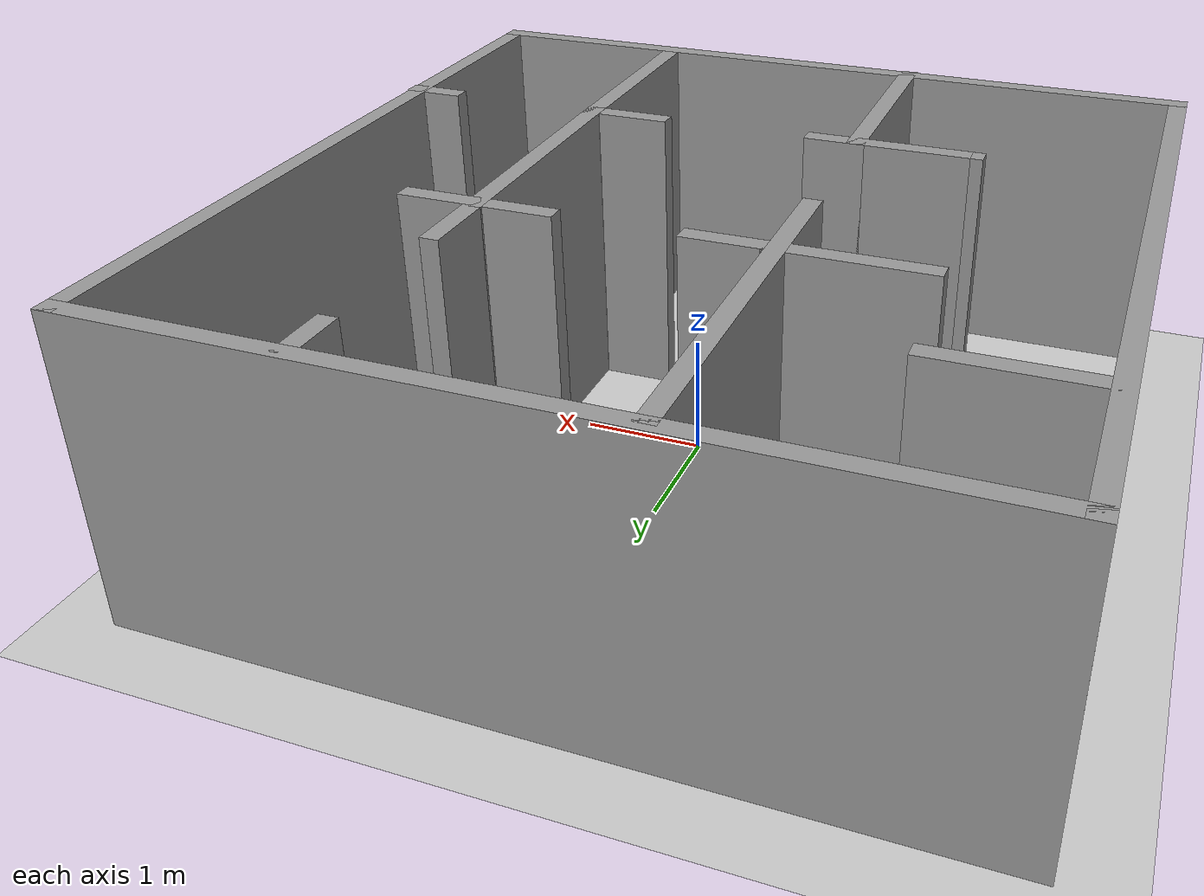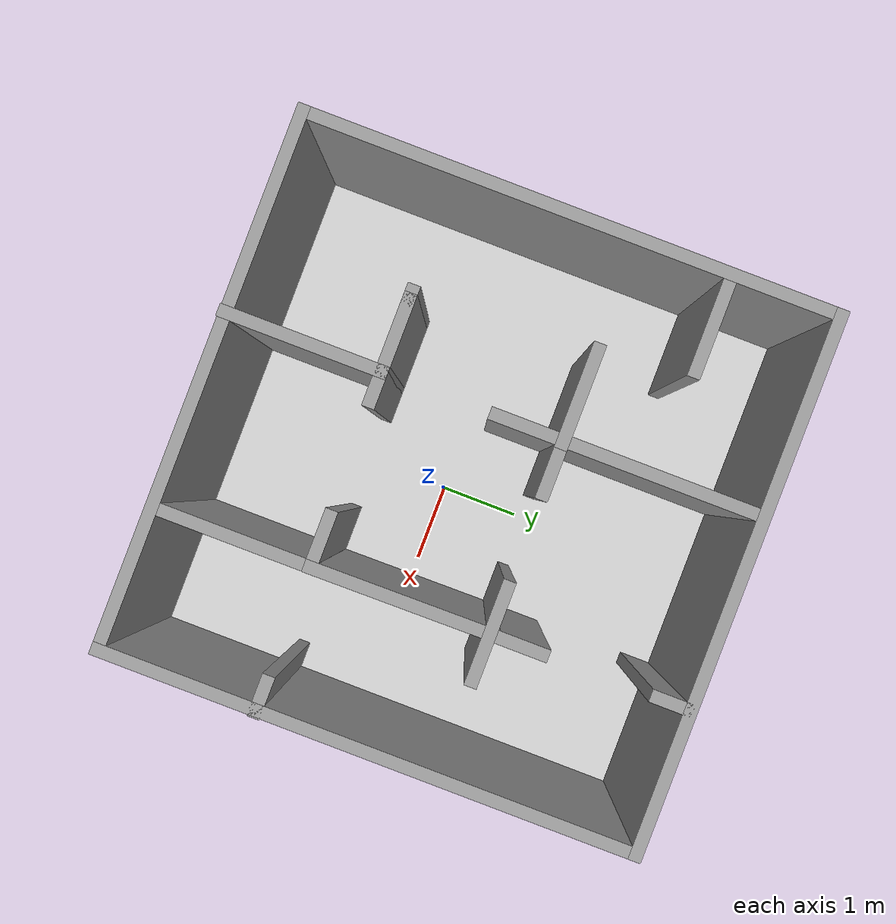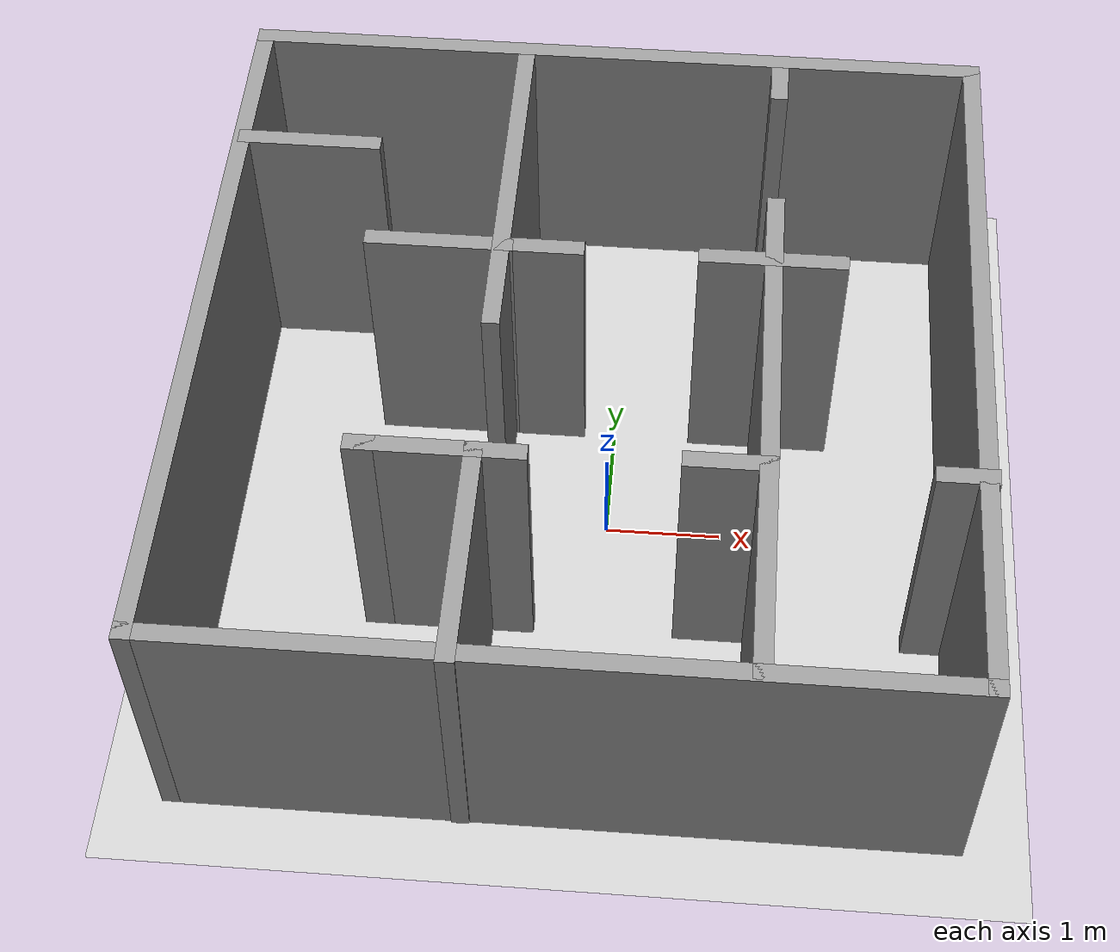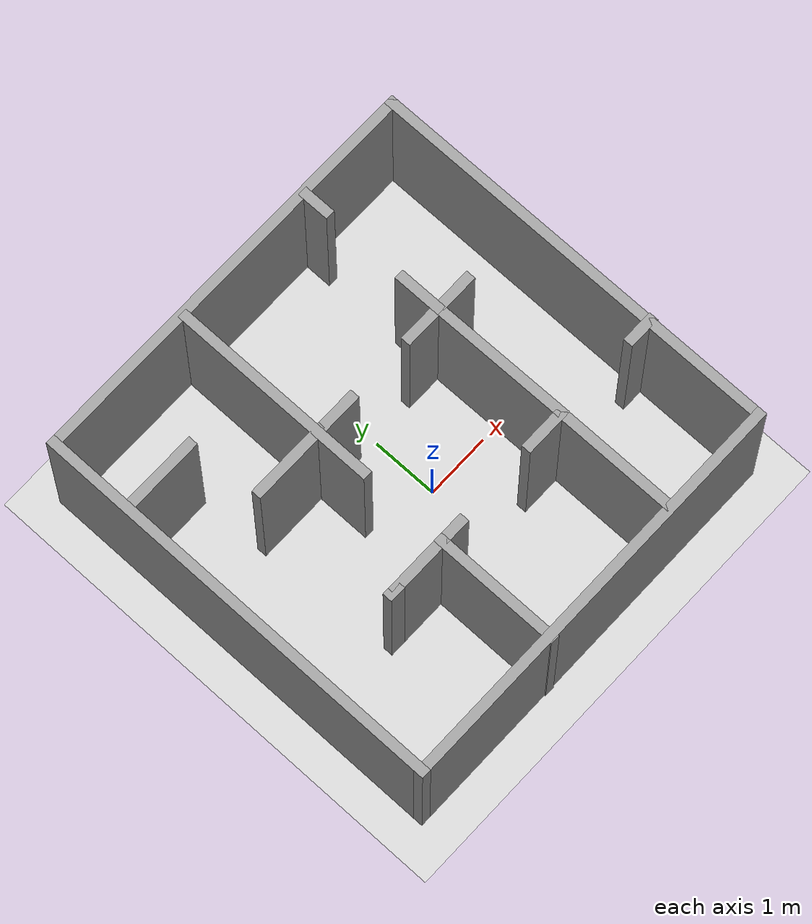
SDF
<sdf version="1.7">
 <world name="default">
  <light name="sun" type="directional">
   <pose>0 0 10 0 -0 0</pose>
   <diffuse>0.8 0.8 0.8 1</diffuse>
   <specular>0.2 0.2 0.2 1</specular>
   <attenuation>
    <range>1000</range>
    <constant>0.9</constant>
    <linear>0.01</linear>
    <quadratic>0.001</quadratic>
   </attenuation>
   <direction>-0.5 0.1 -0.9</direction>
   <spot><inner_angle>0</inner_angle><outer_angle>0</outer_angle><falloff>0</falloff></spot>
  </light>
  <model name="ground_plane">
   <static>1</static>
   <link name="link">
    <collision name="collision">
     <geometry><plane><normal>0 0 1</normal><size>100 100</size></plane></geometry>
     <surface>
      <contact><collide_bitmask>65535</collide_bitmask></contact>
      <friction><ode><mu>100</mu><mu2>50</mu2></ode></friction>
     </surface>
    </collision>
    <visual name="visual">
     <cast_shadows>0</cast_shadows>
     <geometry><plane><normal>0 0 1</normal><size>100 100</size></plane></geometry>
     <material>
      <script><uri>file://media/materials/scripts/gazebo.material</uri><name>Gazebo/Grey</name></script>
     </material>
    </visual>
   </link>
  </model>
  <gravity>0 0 -9.8</gravity>
  <magnetic_field>6e-06 2.3e-05 -4.2e-05</magnetic_field>
  <atmosphere type="adiabatic"/>
  <physics type="ode">
   <max_step_size>0.001</max_step_size>
   <real_time_factor>1</real_time_factor>
   <real_time_update_rate>1000</real_time_update_rate>
  </physics>
  <scene><ambient>0.4 0.4 0.4 1</ambient><background>0.7 0.7 0.7 1</background><shadows>1</shadows></scene>
  <spherical_coordinates>
   <surface_model>EARTH_WGS84</surface_model>
   <latitude_deg>0</latitude_deg>
   <longitude_deg>0</longitude_deg>
   <elevation>0</elevation>
   <heading_deg>0</heading_deg>
  </spherical_coordinates>
  <model name="maze9_2">
   <pose>1.33536 0.286346 0 0 -0 0</pose>
   <link name="Wall_1">
    <collision name="Wall_1_Collision">
     <geometry><box><size>6.5 0.15 2.5</size></box></geometry>
     <pose>0 0 1.25 0 -0 0</pose>
    </collision>
    <visual name="Wall_1_Visual">
     <pose>0 0 1.25 0 -0 0</pose>
     <geometry><box><size>6.5 0.15 2.5</size></box></geometry>
     <material>
      <script><uri>file://media/materials/scripts/gazebo.material</uri><name>Gazebo/Grey</name></script>
      <ambient>1 1 1 1</ambient>
     </material>
     <meta><layer>0</layer></meta>
    </visual>
    <pose>-1.51528 3.18285 0 0 -0 0</pose>
   </link>
   <link name="Wall_12">
    <collision name="Wall_12_Collision">
     <geometry><box><size>1.25 0.15 2.5</size></box></geometry>
     <pose>0 0 1.25 0 -0 0</pose>
    </collision>
    <visual name="Wall_12_Visual">
     <pose>0 0 1.25 0 -0 0</pose>
     <geometry><box><size>1.25 0.15 2.5</size></box></geometry>
     <material>
      <script><uri>file://media/materials/scripts/gazebo.material</uri><name>Gazebo/Grey</name></script>
      <ambient>1 1 1 1</ambient>
     </material>
     <meta><layer>0</layer></meta>
    </visual>
    <pose>-2.84123 0.812729 0 0 -0 0</pose>
   </link>
   <link name="Wall_17">
    <collision name="Wall_17_Collision">
     <geometry><box><size>2 0.15 2.5</size></box></geometry>
     <pose>0 0 1.25 0 -0 0</pose>
    </collision>
    <visual name="Wall_17_Visual">
     <pose>0 0 1.25 0 -0 0</pose>
     <geometry><box><size>2 0.15 2.5</size></box></geometry>
     <material>
      <script><uri>file://media/materials/scripts/gazebo.material</uri><name>Gazebo/Grey</name></script>
      <ambient>1 1 1 1</ambient>
     </material>
     <meta><layer>0</layer></meta>
    </visual>
    <pose>-2.31669 -2.25785 0 0 -0 -1.5708</pose>
   </link>
   <link name="Wall_2">
    <collision name="Wall_2_Collision">
     <geometry><box><size>6.5 0.15 2.5</size></box></geometry>
     <pose>0 0 1.25 0 -0 0</pose>
    </collision>
    <visual name="Wall_2_Visual">
     <pose>0 0 1.25 0 -0 0</pose>
     <geometry><box><size>6.5 0.15 2.5</size></box></geometry>
     <material>
      <script><uri>file://media/materials/scripts/gazebo.material</uri><name>Gazebo/Grey</name></script>
      <ambient>1 1 1 1</ambient>
     </material>
     <meta><layer>0</layer></meta>
    </visual>
    <pose>1.65972 0.007847 0 0 -0 -1.5708</pose>
   </link>
   <link name="Wall_21">
    <collision name="Wall_21_Collision">
     <geometry><box><size>1 0.15 2.5</size></box></geometry>
     <pose>0 0 1.25 0 -0 0</pose>
    </collision>
    <visual name="Wall_21_Visual">
     <pose>0 0 1.25 0 -0 0</pose>
     <geometry><box><size>1 0.15 2.5</size></box></geometry>
     <material>
      <script><uri>file://media/materials/scripts/gazebo.material</uri><name>Gazebo/Grey</name></script>
      <ambient>1 1 1 1</ambient>
     </material>
     <meta><layer>0</layer></meta>
    </visual>
    <pose>-2.74169 -1.33285 0 0 -0 3.14159</pose>
   </link>
   <link name="Wall_22">
    <collision name="Wall_22_Collision">
     <geometry><box><size>0.25 0.15 2.5</size></box></geometry>
     <pose>0 0 1.25 0 -0 0</pose>
    </collision>
    <visual name="Wall_22_Visual">
     <pose>0 0 1.25 0 -0 0</pose>
     <geometry><box><size>0.25 0.15 2.5</size></box></geometry>
     <material>
      <script><uri>file://media/materials/scripts/gazebo.material</uri><name>Gazebo/Grey</name></script>
      <ambient>1 1 1 1</ambient>
     </material>
     <meta><layer>0</layer></meta>
    </visual>
    <pose>-3.21669 -1.33285 0 0 -0 3.14159</pose>
   </link>
   <link name="Wall_24">
    <collision name="Wall_24_Collision">
     <geometry><box><size>0.75 0.15 2.5</size></box></geometry>
     <pose>0 0 1.25 0 -0 0</pose>
    </collision>
    <visual name="Wall_24_Visual">
     <pose>0 0 1.25 0 -0 0</pose>
     <geometry><box><size>0.75 0.15 2.5</size></box></geometry>
     <material>
      <script><uri>file://media/materials/scripts/gazebo.material</uri><name>Gazebo/Grey</name></script>
      <ambient>1 1 1 1</ambient>
     </material>
     <meta><layer>0</layer></meta>
    </visual>
    <pose>-1.99123 0.812729 0 0 -0 0</pose>
   </link>
   <link name="Wall_27">
    <collision name="Wall_27_Collision">
     <geometry><box><size>1.25 0.15 2.5</size></box></geometry>
     <pose>0 0 1.25 0 -0 0</pose>
    </collision>
    <visual name="Wall_27_Visual">
     <pose>0 0 1.25 0 -0 0</pose>
     <geometry><box><size>1.25 0.15 2.5</size></box></geometry>
     <material>
      <script><uri>file://media/materials/scripts/gazebo.material</uri><name>Gazebo/Grey</name></script>
      <ambient>1 1 1 1</ambient>
     </material>
     <meta><layer>0</layer></meta>
    </visual>
    <pose>-0.041227 0.812729 0 0 -0 0</pose>
   </link>
   <link name="Wall_29">
    <collision name="Wall_29_Collision">
     <geometry><box><size>0.5 0.15 2.5</size></box></geometry>
     <pose>0 0 1.25 0 -0 0</pose>
    </collision>
    <visual name="Wall_29_Visual">
     <pose>0 0 1.25 0 -0 0</pose>
     <geometry><box><size>0.5 0.15 2.5</size></box></geometry>
     <material>
      <script><uri>file://media/materials/scripts/gazebo.material</uri><name>Gazebo/Grey</name></script>
      <ambient>1 1 1 1</ambient>
     </material>
     <meta><layer>0</layer></meta>
    </visual>
    <pose>-0.038733 2.95686 0 0 -0 -1.5708</pose>
   </link>
   <link name="Wall_3">
    <collision name="Wall_3_Collision">
     <geometry><box><size>6.5 0.15 2.5</size></box></geometry>
     <pose>0 0 1.25 0 -0 0</pose>
    </collision>
    <visual name="Wall_3_Visual">
     <pose>0 0 1.25 0 -0 0</pose>
     <geometry><box><size>6.5 0.15 2.5</size></box></geometry>
     <material>
      <script><uri>file://media/materials/scripts/gazebo.material</uri><name>Gazebo/Grey</name></script>
      <ambient>1 1 1 1</ambient>
     </material>
     <meta><layer>0</layer></meta>
    </visual>
    <pose>-1.51528 -3.16715 0 0 -0 3.14159</pose>
   </link>
   <link name="Wall_31">
    <collision name="Wall_31_Collision">
     <geometry><box><size>0.75 0.15 2.5</size></box></geometry>
     <pose>0 0 1.25 0 -0 0</pose>
    </collision>
    <visual name="Wall_31_Visual">
     <pose>0 0 1.25 0 -0 0</pose>
     <geometry><box><size>0.75 0.15 2.5</size></box></geometry>
     <material>
      <script><uri>file://media/materials/scripts/gazebo.material</uri><name>Gazebo/Grey</name></script>
      <ambient>1 1 1 1</ambient>
     </material>
     <meta><layer>0</layer></meta>
    </visual>
    <pose>-0.038733 1.13186 0 0 -0 -1.5708</pose>
   </link>
   <link name="Wall_33">
    <collision name="Wall_33_Collision">
     <geometry><box><size>2.2813 0.15 2.5</size></box></geometry>
     <pose>0 0 1.25 0 -0 0</pose>
    </collision>
    <visual name="Wall_33_Visual">
     <pose>0 0 1.25 0 -0 0</pose>
     <geometry><box><size>2.2813 0.15 2.5</size></box></geometry>
     <material>
      <script><uri>file://media/materials/scripts/gazebo.material</uri><name>Gazebo/Grey</name></script>
      <ambient>1 1 1 1</ambient>
     </material>
     <meta><layer>0</layer></meta>
    </visual>
    <pose>-0.030205 -0.233778 0 0 -0 -1.56279</pose>
   </link>
   <link name="Wall_36">
    <collision name="Wall_36_Collision">
     <geometry><box><size>0.5 0.15 2.5</size></box></geometry>
     <pose>0 0 1.25 0 -0 0</pose>
    </collision>
    <visual name="Wall_36_Visual">
     <pose>0 0 1.25 0 -0 0</pose>
     <geometry><box><size>0.5 0.15 2.5</size></box></geometry>
     <material>
      <script><uri>file://media/materials/scripts/gazebo.material</uri><name>Gazebo/Grey</name></script>
      <ambient>1 1 1 1</ambient>
     </material>
     <meta><layer>0</layer></meta>
    </visual>
    <pose>-2.14169 -1.33285 0 0 -0 0</pose>
   </link>
   <link name="Wall_4">
    <collision name="Wall_4_Collision">
     <geometry><box><size>6.5 0.15 2.5</size></box></geometry>
     <pose>0 0 1.25 0 -0 0</pose>
    </collision>
    <visual name="Wall_4_Visual">
     <pose>0 0 1.25 0 -0 0</pose>
     <geometry><box><size>6.5 0.15 2.5</size></box></geometry>
     <material>
      <script><uri>file://media/materials/scripts/gazebo.material</uri><name>Gazebo/Grey</name></script>
      <ambient>1 1 1 1</ambient>
     </material>
     <meta><layer>0</layer></meta>
    </visual>
    <pose>-4.69029 0.007847 0 0 -0 1.5708</pose>
   </link>
   <link name="Wall_40">
    <collision name="Wall_40_Collision">
     <geometry><box><size>0.75 0.15 2.5</size></box></geometry>
     <pose>0 0 1.25 0 -0 0</pose>
    </collision>
    <visual name="Wall_40_Visual">
     <pose>0 0 1.25 0 -0 0</pose>
     <geometry><box><size>0.75 0.15 2.5</size></box></geometry>
     <material>
      <script><uri>file://media/materials/scripts/gazebo.material</uri><name>Gazebo/Grey</name></script>
      <ambient>1 1 1 1</ambient>
     </material>
     <meta><layer>0</layer></meta>
    </visual>
    <pose>-0.32452 -1.29941 0 0 -0 0</pose>
   </link>
   <link name="Wall_45">
    <collision name="Wall_45_Collision">
     <geometry><box><size>0.5 0.15 2.5</size></box></geometry>
     <pose>0 0 1.25 0 -0 0</pose>
    </collision>
    <visual name="Wall_45_Visual">
     <pose>0 0 1.25 0 -0 0</pose>
     <geometry><box><size>0.5 0.15 2.5</size></box></geometry>
     <material>
      <script><uri>file://media/materials/scripts/gazebo.material</uri><name>Gazebo/Grey</name></script>
      <ambient>1 1 1 1</ambient>
     </material>
     <meta><layer>0</layer></meta>
    </visual>
    <pose>1.50048 -1.29941 0 0 -0 0</pose>
   </link>
   <link name="Wall_47">
    <collision name="Wall_47_Collision">
     <geometry><box><size>2 0.15 2.5</size></box></geometry>
     <pose>0 0 1.25 0 -0 0</pose>
    </collision>
    <visual name="Wall_47_Visual">
     <pose>0 0 1.25 0 -0 0</pose>
     <geometry><box><size>2 0.15 2.5</size></box></geometry>
     <material>
      <script><uri>file://media/materials/scripts/gazebo.material</uri><name>Gazebo/Grey</name></script>
      <ambient>1 1 1 1</ambient>
     </material>
     <meta><layer>0</layer></meta>
    </visual>
    <pose>-0.02452 -2.22441 0 0 -0 -1.5708</pose>
   </link>
   <link name="Wall_6">
    <collision name="Wall_6_Collision">
     <geometry><box><size>1.25 0.15 2.5</size></box></geometry>
     <pose>0 0 1.25 0 -0 0</pose>
    </collision>
    <visual name="Wall_6_Visual">
     <pose>0 0 1.25 0 -0 0</pose>
     <geometry><box><size>1.25 0.15 2.5</size></box></geometry>
     <material>
      <script><uri>file://media/materials/scripts/gazebo.material</uri><name>Gazebo/Grey</name></script>
      <ambient>1 1 1 1</ambient>
     </material>
     <meta><layer>0</layer></meta>
    </visual>
    <pose>-4.09634 1.90068 0 0 -0 0</pose>
   </link>
   <link name="Wall_9">
    <collision name="Wall_9_Collision">
     <geometry><box><size>3.25 0.15 2.5</size></box></geometry>
     <pose>0 0 1.25 0 -0 0</pose>
    </collision>
    <visual name="Wall_9_Visual">
     <pose>0 0 1.25 0 -0 0</pose>
     <geometry><box><size>3.25 0.15 2.5</size></box></geometry>
     <material>
      <script><uri>file://media/materials/scripts/gazebo.material</uri><name>Gazebo/Grey</name></script>
      <ambient>1 1 1 1</ambient>
     </material>
     <meta><layer>0</layer></meta>
    </visual>
    <pose>-2.31669 1.56715 0 0 -0 -1.5708</pose>
   </link>
   <static>1</static>
  </model>
 </world>
</sdf>
